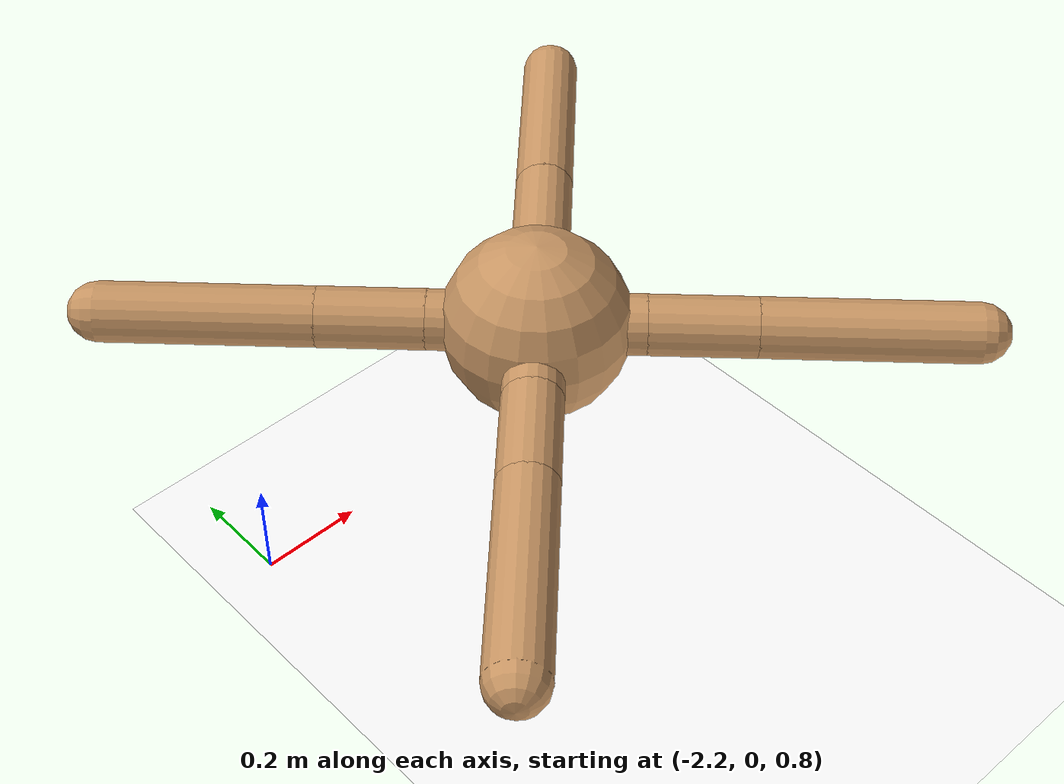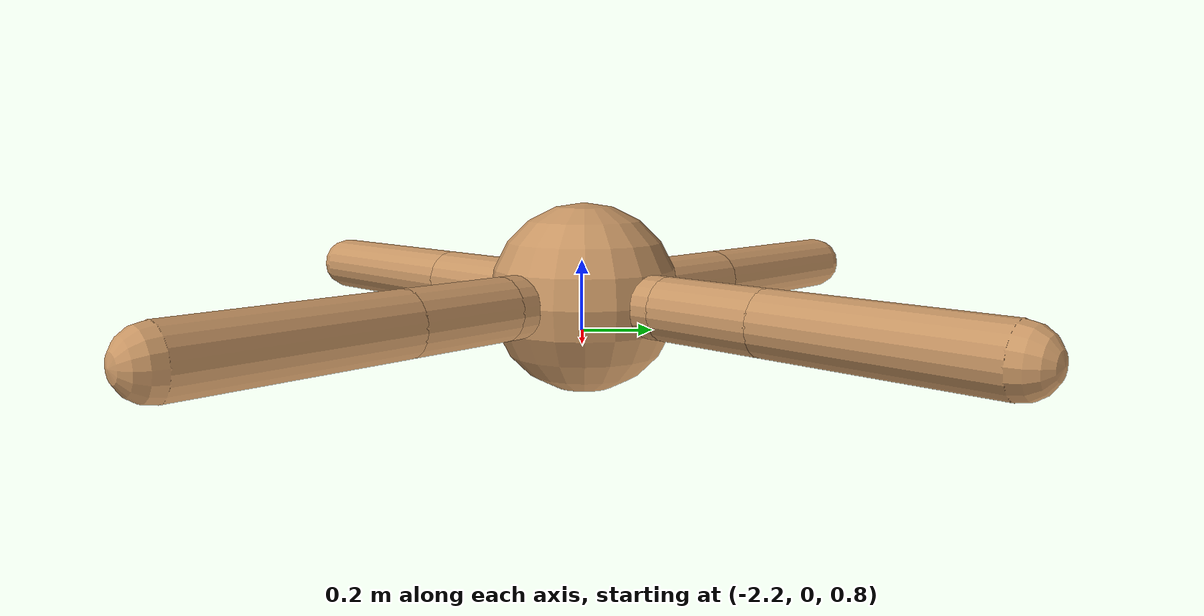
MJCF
<mujoco model="two-ants-environment">
  <compiler angle="degree" coordinate="local" inertiafromgeom="true" meshdir="include/"/>
  <option integrator="RK4" timestep="0.01"/>
  <size nconmax="1000" njmax="1000"/>

  <default>
    <joint armature="1" damping="1" limited="true"/>
    <default class="ant">
      <geom conaffinity="1" condim="3" density="5.0" friction="1 0.5 0.5" margin="0.01" rgba="0.8 0.6 0.4 1" material="geom"/>
      <motor ctrllimited="true" ctrlrange="-2 2"/>
    </default>

  </default>

  <asset>

    <texture builtin="gradient" height="100" rgb1=".8 .8 1" rgb2="0 0 0" type="skybox" width="100"/>
    <texture builtin="flat" height="1278" mark="cross" markrgb="1 1 1" name="texgeom" random="0.01" rgb1="0.8 0.6 0.4" rgb2="0.8 0.6 0.4" type="cube" width="127"/>
    <texture builtin="flat" height="100" name="floorplane" rgb1=".2 0.2 0.2" rgb2="0 0 0" type="2d" width="100"/>
    <texture builtin="flat" height="100" name="tatamiplane" rgb1=".65 0.57 0.31" rgb2="0 0 0" type="2d" width="100"/>
    <material name="MatPlane" reflectance="0.1" shininess="1" specular="1" texrepeat="1 1" texture="floorplane"/>
    <material name="TatamiPlane" reflectance="0.25" shininess="1" specular="1" texrepeat="1 1" texture="tatamiplane"/>
    <material name="geom" texture="texgeom" texuniform="true"/>

  </asset>

  <worldbody>
    <light cutoff="100" diffuse="1 1 1" dir="0 0 -1.3" directional="true" exponent="2" pos="0 0 1.3" specular=".5 .5 .5"/>

    <camera name="topcam" pos="0 0 30" zaxis="0 0 1"/>

    <geom contype="1" conaffinity="1" friction="1 .1 .1" condim="3" material="TatamiPlane" name="floor" pos="0 5 0" rgba="1 1 1 1" size="2 7 0.5" type="plane"/>
    <geom name="line1" pos="0 0 0.05" size="2 0.1 0.05" type="plane" rgba="0 1 0 1"/>
    <geom name="line2" pos="0 5 0.05" size="2 0.1 0.05" type="plane" rgba="0.2 0.6 0.1 1"/>
    <geom name="line3" pos="0 10 0.05" size="2 0.1 0.05" type="plane" rgba="0.4 0.5 0.2 1"/>
    <geom name="line4" pos="0 15 0.05" size="2 0.1 0.05" type="plane" rgba="0.7 0.2 0.3 1"/>
    <geom name="line5" pos="0 20 0.05" size="2 0.1 0.05" type="plane" rgba="0.8 0.2 0.5 1"/>
    <geom name="line6" pos="0 25 0.05" size="2 0.1 0.05" type="plane" rgba="1 0 0 1"/>

    <include file="include/ant.xml" />
  </worldbody>
  <include file="include/ant-sensor-actuator.xml" />
</mujoco>

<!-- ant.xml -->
<mujocoinclude>
  <body name="torso" pos="-1.5 0 1" >
    <geom class="ant" name="torso_geom" pos="0 0 0" size="0.20" type="sphere"/>
    <joint armature="0" damping="0" limited="false" margin="0.01" name="root" pos="0 0 0" type="free"/>
    <!-- Front left leg -->
    <body name="front_left_leg" pos="0 0 0">
      <geom class="ant" fromto="0.0 0.0 0.0 -0.16 0.16 0.0" name="aux_1_geom" size="0.064" type="capsule"/>
      <body name="aux_11" pos="-0.16 0.16 0">
        <joint axis="0 0 1" name="hip_1" pos="0.0 0.0 0.0" range="-30 30" type="hinge"/>
        <geom class="ant" fromto="0.0 0.0 0.0 -0.16 0.16 0.0" name="front_left_leg_geom" size="0.064" type="capsule"/>
        <body name="aux_12" pos="-0.16 0.16 0">
          <joint axis="1 1 0" name="ankle_1" pos="0.0 0.0 0.0" range="-70 -30" type="hinge"/>
          <geom class="ant" fromto="0.0 0.0 0.0 -0.32 0.32 0.0" name="front_left_ankle_geom" size="0.064" type="capsule"/>
        </body>
      </body>
    </body>
    <!-- Front right leg -->
    <body name="front_right_leg" pos="0 0 0">
      <geom class="ant" fromto="0.0 0.0 0.0 0.16 0.16 0.0" name="aux_2_geom" size="0.064" type="capsule"/>
      <body name="aux_21" pos="0.16 0.16 0">
        <joint axis="0 0 1" name="hip_2" pos="0.0 0.0 0.0" range="-30 30" type="hinge"/>
        <geom class="ant" fromto="0.0 0.0 0.0 0.16 0.16 0.0" name="front_right_leg_geom" size="0.064" type="capsule"/>
        <body name="aux_22" pos="0.16 0.16 0">
          <joint axis="-1 1 0" name="ankle_2" pos="0.0 0.0 0.0" range="30 70" type="hinge"/>
          <geom class="ant" fromto="0.0 0.0 0.0 0.32 0.32 0.0" name="front_right_ankle_geom" size="0.064" type="capsule"/>
        </body>
      </body>
    </body>
    <!-- Back left leg -->
    <body name="back_left_leg" pos="0 0 0">
      <geom class="ant" fromto="0.0 0.0 0.0 -0.16 -0.16 0.0" name="aux_3_geom" size="0.064" type="capsule"/>
      <body name="aux_31" pos="-0.16 -0.16 0">
        <joint axis="0 0 1" name="hip_3" pos="0.0 0.0 0.0" range="-30 30" type="hinge"/>
        <geom class="ant" fromto="0.0 0.0 0.0 -0.16 -0.16 0.0" name="back_left_leg_geom" size="0.064" type="capsule"/>
        <body name="aux_32" pos="-0.16 -0.16 0">
          <joint axis="-1 1 0" name="ankle_3" pos="0.0 0.0 0.0" range="-70 -30" type="hinge"/>
          <geom class="ant" fromto="0.0 0.0 0.0 -0.32 -0.32 0.0" name="back_left_ankle_geom" size="0.064" type="capsule"/>
        </body>
      </body>
    </body>
    <body name="back_right_leg" pos="0 0 0">
      <geom class="ant" fromto="0.0 0.0 0.0 0.16 -0.16 0.0" name="aux_4_geom" size="0.064" type="capsule"/>
      <body name="aux_41" pos="0.16 -0.16 0">
        <joint axis="0 0 1" name="hip_4" pos="0.0 0.0 0.0" range="-30 30" type="hinge"/>
        <geom class="ant" fromto="0.0 0.0 0.0 0.16 -0.16 0.0" name="back_right_leg_geom" size="0.064" type="capsule"/>
        <body name="aux_42" pos="0.16 -0.16 0">
          <joint axis="1 1 0" name="ankle_4" pos="0.0 0.0 0.0" range="30 70" type="hinge"/>
          <geom class="ant" fromto="0.0 0.0 0.0 0.32 -0.32 0.0" name="back_right_ankle_geom" size="0.064" type="capsule"/>
        </body>
      </body>
    </body>
  </body>
</mujocoinclude>

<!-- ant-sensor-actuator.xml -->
<mujocoinclude>
    <actuator>
    <motor class="ant" joint="hip_1" gear="150"/>
    <motor class="ant" joint="ankle_1" gear="150"/>
    <motor class="ant" joint="hip_2" gear="150"/>
    <motor class="ant" joint="ankle_2" gear="150"/>
    <motor class="ant" joint="hip_3" gear="150"/>
    <motor class="ant" joint="ankle_3" gear="150"/>
    <motor class="ant" joint="hip_4" gear="150"/>
    <motor class="ant" joint="ankle_4" gear="150"/>
  </actuator>
  <sensor>
    <!-- Positions -->
    <jointpos name='pos_hip_12' joint='hip_1' />
    <jointpos name='pos_hip_22' joint='hip_2' />
    <jointpos name='pos_hip_32' joint='hip_3' />
    <jointpos name='pos_hip_42' joint='hip_4' />
    <jointpos name='pos_ankle_12' joint='ankle_1' />
    <jointpos name='pos_ankle_22' joint='ankle_2' />
    <jointpos name='pos_ankle_32' joint='ankle_3' />
    <jointpos name='pos_ankle_42' joint='ankle_4' />
    <!-- Velocities -->
    <jointvel name='vel_hip_12'   joint='hip_1' />
    <jointvel name='vel_hip_22'   joint='hip_2' />
    <jointvel name='vel_hip_32'   joint='hip_3' />
    <jointvel name='vel_hip_42'   joint='hip_4' />
    <jointvel name='vel_ankle_12' joint='ankle_1' />
    <jointvel name='vel_ankle_22' joint='ankle_2' />
    <jointvel name='vel_ankle_32' joint='ankle_3' />
    <jointvel name='vel_ankle_42' joint='ankle_4' />
  </sensor>
</mujocoinclude>
